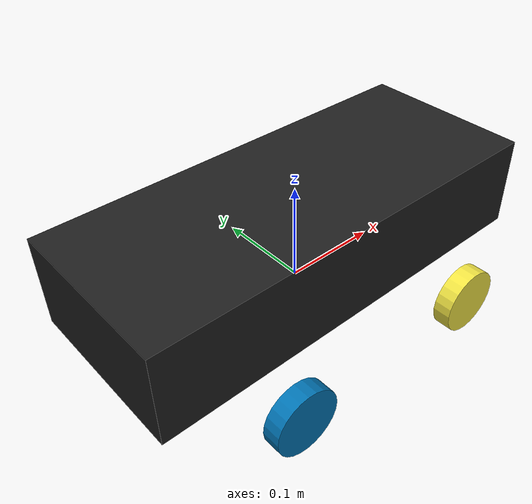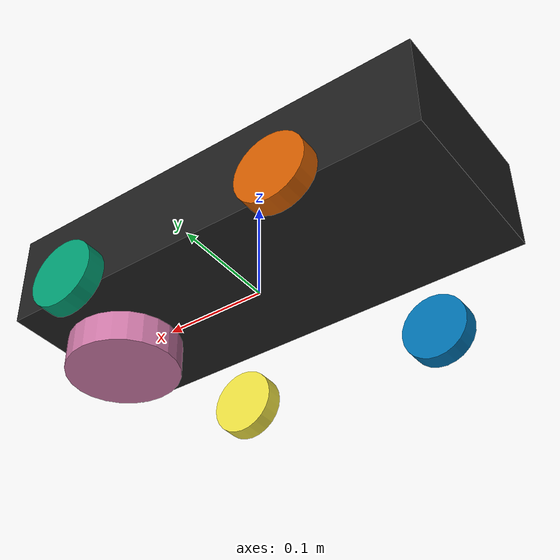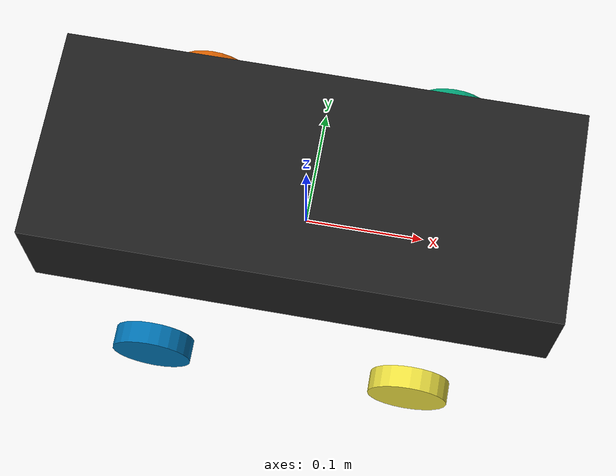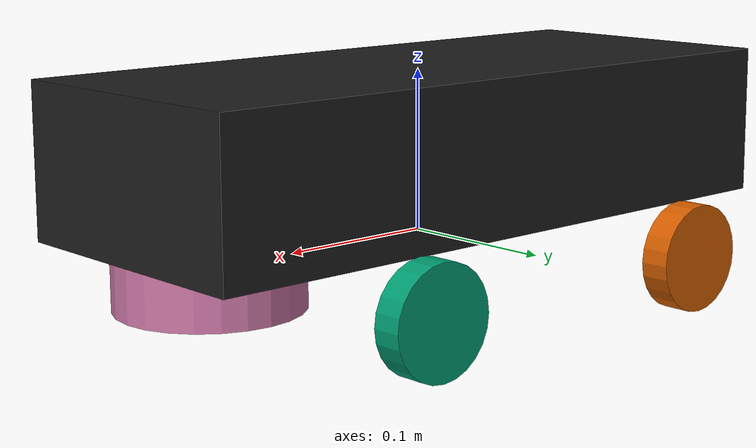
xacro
<?xml version='1.0'?>

<robot name="shipbot" xmlns:xacro="http://ros.org/wiki/xacro">
  <xacro:include filename="$(find shipbot_description)/urdf/common_properties.xacro"/>

  <link name="base_footprint"/>

  <joint name="base_joint" type="fixed">
    <parent link="base_footprint"/>
    <child link="base_link" />
    <origin xyz="0 0 0.010" rpy="0 0 0"/>
  </joint>

  <link name="base_link">
    <visual>
      <origin xyz="0 0 0.047" rpy="0 0 0"/>
      <geometry>
        <box size="0.43 0.1778 0.094"/>
      </geometry>
      <material name="light_black"/>
    </visual>

    <collision>
      <origin xyz="0 0 0.047" rpy="0 0 0"/>
      <geometry>
        <box size="0.43 0.1778 0.094"/>
      </geometry>
    </collision>

    <inertial>
      <origin xyz="0 0 0" rpy="0 0 0"/>
      <mass value="15.0"/>
      <inertia ixx="0.1" ixy="0" ixz="0"
               iyy="0.1" iyz="0"
               izz="0.1" />
    </inertial>
  </link>

  <joint name="wheel_front_left_joint" type="continuous">
    <parent link="base_link"/>
    <child link="wheel_front_left_link"/>
    <origin xyz="0.108 0.127 -0.023" rpy="-1.57 0 0"/>
    <axis xyz="0 0 1"/>
  </joint>

  <link name="wheel_front_left_link">
    <visual>
      <origin xyz="0 0 0" rpy="0 0 0"/>
      <geometry>
        <cylinder length="0.018" radius="0.033"/>
      </geometry>
      <material name="dark"/>
    </visual>

    <collision>
      <origin xyz="0 0 0" rpy="0 0 0"/>
      <geometry>
        <cylinder length="0.018" radius="0.033"/>
      </geometry>
    </collision>

    <inertial>
      <origin xyz="0 0 0" />
      <mass value="1.0" />
      <inertia ixx="0.1" ixy="0" ixz="0"
               iyy="0.1" iyz="0"
               izz="0.1" />
    </inertial>
  </link>

  <joint name="wheel_front_right_joint" type="continuous">
    <parent link="base_link"/>
    <child link="wheel_front_right_link"/>
    <origin xyz="0.108 -0.127 -0.023" rpy="-1.57 0 0"/>
    <axis xyz="0 0 1"/>
  </joint>

  <link name="wheel_front_right_link">
    <visual>
      <origin xyz="0 0 0" rpy="0 0 0"/>
      <geometry>
        <cylinder length="0.018" radius="0.033"/>
      </geometry>
      <material name="dark"/>
    </visual>

    <collision>
      <origin xyz="0 0 0" rpy="0 0 0"/>
      <geometry>
        <cylinder length="0.018" radius="0.033"/>
      </geometry>
    </collision>

    <inertial>
      <origin xyz="0 0 0" />
      <mass value="1.0" />
      <inertia ixx="0.1" ixy="0" ixz="0"
               iyy="0.1" iyz="0"
               izz="0.1" />
      </inertial>
  </link>

  <joint name="wheel_rear_right_joint" type="fixed">
    <parent link="base_link"/>
    <child link="wheel_rear_right_link"/>
    <origin xyz="-0.108 -0.127 -0.023" rpy="-1.57 0 0"/>
    <axis xyz="0 0 1"/>
  </joint>

  <link name="wheel_rear_right_link">
    <visual>
      <origin xyz="0 0 0" rpy="0 0 0"/>
      <geometry>
        <cylinder length="0.018" radius="0.033"/>
      </geometry>
      <material name="dark"/>
    </visual>

    <collision>
      <origin xyz="0 0 0" rpy="0 0 0"/>
      <geometry>
        <cylinder length="0.018" radius="0.033"/>
      </geometry>
    </collision>

    <inertial>
      <origin xyz="0 0 0" />
      <mass value="1.0" />
      <inertia ixx="0.1" ixy="0" ixz="0"
               iyy="0.1" iyz="0"
               izz="0.1" />
    </inertial>
  </link>

  <joint name="wheel_rear_left_joint" type="fixed">
    <parent link="base_link"/>
    <child link="wheel_rear_left_link"/>
    <origin xyz="-0.108 0.127 -0.023" rpy="-1.57 0 0"/>
    <axis xyz="0 0 1"/>
  </joint>

  <link name="wheel_rear_left_link">
    <visual>
      <origin xyz="0 0 0" rpy="0 0 0"/>
      <geometry>
        <cylinder length="0.018" radius="0.033"/>
      </geometry>
      <material name="dark"/>
    </visual>

    <collision>
      <origin xyz="0 0 0" rpy="0 0 0"/>
      <geometry>
        <cylinder length="0.018" radius="0.033"/>
      </geometry>
    </collision>

    <inertial>
      <origin xyz="0 0 0" />
      <mass value="1.0" />
      <inertia ixx="0.1" ixy="0" ixz="0"
               iyy="0.1" iyz="0"
               izz="0.1" />
    </inertial>
  </link>

  <joint name="scan_joint" type="fixed">
    <parent link="base_link"/>
    <child link="base_scan"/>
    <origin xyz="0.159 0 -0.0158" rpy="0 0 0"/>
  </joint>

  <link name="base_scan">
    <visual>
      <origin xyz="0 0 0" rpy="0 0 0"/>
      <geometry>
        <cylinder length="0.0315" radius="0.055"/>
      </geometry>
      <material name="dark"/>
    </visual>

    <collision>
      <origin xyz="0 0 0" rpy="0 0 0"/>
      <geometry>
        <cylinder length="0.0315" radius="0.055"/>
      </geometry>
    </collision>

    <inertial>
      <mass value="0.114" />
      <origin xyz="0 0 0" />
      <inertia ixx="0.001" ixy="0.0" ixz="0.0"
               iyy="0.001" iyz="0.0"
               izz="0.001" />
    </inertial>
  </link>

</robot>
